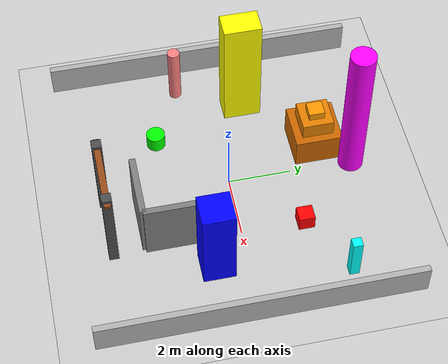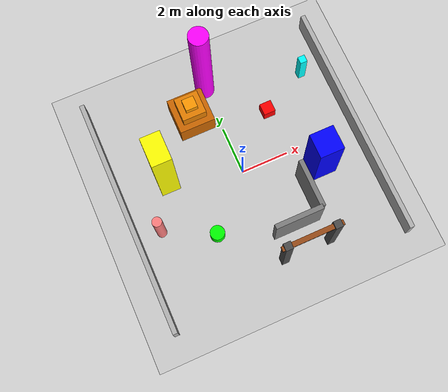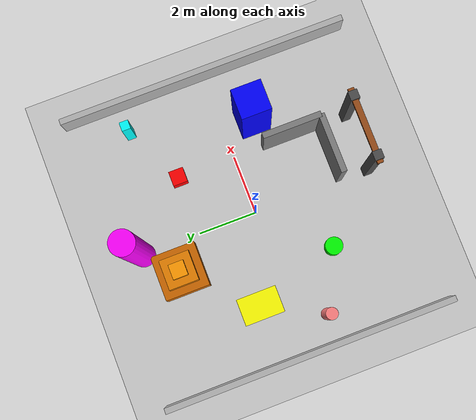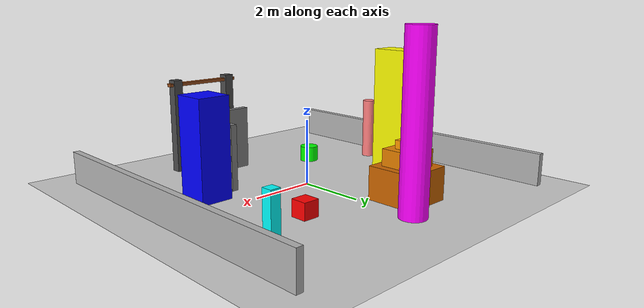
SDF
<?xml version='1.0' encoding='utf-8'?>
<sdf version="1.6">
  <world name="simple_world">

    <!-- Light -->
    <light type="directional" name="sun">
      <cast_shadows>true</cast_shadows>
      <pose>0 0 10 0 0 0</pose>
      <diffuse>0.8 0.8 0.8 1</diffuse>
      <specular>0.2 0.2 0.2 1</specular>
      <attenuation>
        <range>1000</range>
        <constant>0.9</constant>
        <linear>0.01</linear>
        <quadratic>0.001</quadratic>
      </attenuation>
      <direction>-0.5 0.1 -0.9</direction>
    </light>

    <!-- Ground Plane -->
    <model name="ground_plane">
      <static>true</static>
      <link name="link">
        <collision name="collision">
          <geometry>
            <plane>
              <normal>0 0 1</normal>
            </plane>
          </geometry>
        </collision>
        <visual name="visual">
          <geometry>
            <plane>
              <normal>0 0 1</normal>
              <size>100 100</size>
            </plane>
          </geometry>
          <material>
            <ambient>0.8 0.8 0.8 1</ambient>
            <diffuse>0.8 0.8 0.8 1</diffuse>
            <specular>0.8 0.8 0.8 1</specular>
          </material>
        </visual>
      </link>
    </model>

    <!-- Simple walls for testing -->
    <model name="wall_1">
      <static>true</static>
      <pose>5 0 0.5 0 0 0</pose>
      <link name="link">
        <collision name="collision">
          <geometry>
            <box>
              <size>0.2 10 1</size>
            </box>
          </geometry>
        </collision>
        <visual name="visual">
          <geometry>
            <box>
              <size>0.2 10 1</size>
            </box>
          </geometry>
          <material>
            <ambient>0.7 0.7 0.7 1</ambient>
            <diffuse>0.7 0.7 0.7 1</diffuse>
          </material>
        </visual>
      </link>
    </model>

    <model name="wall_2">
      <static>true</static>
      <pose>-5 0 0.5 0 0 0</pose>
      <link name="link">
        <collision name="collision">
          <geometry>
            <box>
              <size>0.2 10 1</size>
            </box>
          </geometry>
        </collision>
        <visual name="visual">
          <geometry>
            <box>
              <size>0.2 10 1</size>
            </box>
          </geometry>
          <material>
            <ambient>0.7 0.7 0.7 1</ambient>
            <diffuse>0.7 0.7 0.7 1</diffuse>
          </material>
        </visual>
      </link>
    </model>

    <!-- Some obstacles for LIDAR testing -->
    <model name="obstacle_1">
      <static>true</static>
      <pose>2 2 0.25 0 0 0</pose>
      <link name="link">
        <collision name="collision">
          <geometry>
            <box>
              <size>0.5 0.5 0.5</size>
            </box>
          </geometry>
        </collision>
        <visual name="visual">
          <geometry>
            <box>
              <size>0.5 0.5 0.5</size>
            </box>
          </geometry>
          <material>
            <ambient>1 0 0 1</ambient>
            <diffuse>1 0 0 1</diffuse>
          </material>
        </visual>
      </link>
    </model>

    <model name="obstacle_2">
      <static>true</static>
      <pose>-2 -2 0.25 0 0 0</pose>
      <link name="link">
        <collision name="collision">
          <geometry>
            <cylinder>
              <radius>0.3</radius>
              <length>0.5</length>
            </cylinder>
          </geometry>
        </collision>
        <visual name="visual">
          <geometry>
            <cylinder>
              <radius>0.3</radius>
              <length>0.5</length>
            </cylinder>
          </geometry>
          <material>
            <ambient>0 1 0 1</ambient>
            <diffuse>0 1 0 1</diffuse>
          </material>
        </visual>
      </link>
    </model>

    <!-- Tall building blocks -->
    <model name="tall_building_1">
      <static>true</static>
      <pose>3 -1 1.5 0 0 0</pose>
      <link name="link">
        <collision name="collision">
          <geometry>
            <box>
              <size>1 1 3</size>
            </box>
          </geometry>
        </collision>
        <visual name="visual">
          <geometry>
            <box>
              <size>1 1 3</size>
            </box>
          </geometry>
          <material>
            <ambient>0 0 1 1</ambient>
            <diffuse>0 0 1 1</diffuse>
          </material>
        </visual>
      </link>
    </model>

    <model name="tall_building_2">
      <static>true</static>
      <pose>-3 1 2 0 0 0</pose>
      <link name="link">
        <collision name="collision">
          <geometry>
            <box>
              <size>0.8 1.2 4</size>
            </box>
          </geometry>
        </collision>
        <visual name="visual">
          <geometry>
            <box>
              <size>0.8 1.2 4</size>
            </box>
          </geometry>
          <material>
            <ambient>1 1 0 1</ambient>
            <diffuse>1 1 0 1</diffuse>
          </material>
        </visual>
      </link>
    </model>

    <!-- Tower -->
    <model name="tower">
      <static>true</static>
      <pose>0 4 2.5 0 0 0</pose>
      <link name="link">
        <collision name="collision">
          <geometry>
            <cylinder>
              <radius>0.4</radius>
              <length>5</length>
            </cylinder>
          </geometry>
        </collision>
        <visual name="visual">
          <geometry>
            <cylinder>
              <radius>0.4</radius>
              <length>5</length>
            </cylinder>
          </geometry>
          <material>
            <ambient>1 0 1 1</ambient>
            <diffuse>1 0 1 1</diffuse>
          </material>
        </visual>
      </link>
    </model>

    <!-- L-shaped wall -->
    <model name="l_wall_1">
      <static>true</static>
      <pose>1 -3 1 0 0 0</pose>
      <link name="link">
        <collision name="collision">
          <geometry>
            <box>
              <size>2 0.2 2</size>
            </box>
          </geometry>
        </collision>
        <visual name="visual">
          <geometry>
            <box>
              <size>2 0.2 2</size>
            </box>
          </geometry>
          <material>
            <ambient>0.5 0.5 0.5 1</ambient>
            <diffuse>0.5 0.5 0.5 1</diffuse>
          </material>
        </visual>
      </link>
    </model>

    <model name="l_wall_2">
      <static>true</static>
      <pose>2 -2 1 0 0 0</pose>
      <link name="link">
        <collision name="collision">
          <geometry>
            <box>
              <size>0.2 2 2</size>
            </box>
          </geometry>
        </collision>
        <visual name="visual">
          <geometry>
            <box>
              <size>0.2 2 2</size>
            </box>
          </geometry>
          <material>
            <ambient>0.5 0.5 0.5 1</ambient>
            <diffuse>0.5 0.5 0.5 1</diffuse>
          </material>
        </visual>
      </link>
    </model>

    <!-- Pyramid-like structure -->
    <model name="pyramid_base">
      <static>true</static>
      <pose>-1 3 0.5 0 0 0</pose>
      <link name="link">
        <collision name="collision">
          <geometry>
            <box>
              <size>1.5 1.5 1</size>
            </box>
          </geometry>
        </collision>
        <visual name="visual">
          <geometry>
            <box>
              <size>1.5 1.5 1</size>
            </box>
          </geometry>
          <material>
            <ambient>0.8 0.4 0 1</ambient>
            <diffuse>0.8 0.4 0 1</diffuse>
          </material>
        </visual>
      </link>
    </model>

    <model name="pyramid_mid">
      <static>true</static>
      <pose>-1 3 1.25 0 0 0</pose>
      <link name="link">
        <collision name="collision">
          <geometry>
            <box>
              <size>1 1 0.5</size>
            </box>
          </geometry>
        </collision>
        <visual name="visual">
          <geometry>
            <box>
              <size>1 1 0.5</size>
            </box>
          </geometry>
          <material>
            <ambient>0.9 0.5 0 1</ambient>
            <diffuse>0.9 0.5 0 1</diffuse>
          </material>
        </visual>
      </link>
    </model>

    <model name="pyramid_top">
      <static>true</static>
      <pose>-1 3 1.625 0 0 0</pose>
      <link name="link">
        <collision name="collision">
          <geometry>
            <box>
              <size>0.5 0.5 0.25</size>
            </box>
          </geometry>
        </collision>
        <visual name="visual">
          <geometry>
            <box>
              <size>0.5 0.5 0.25</size>
            </box>
          </geometry>
          <material>
            <ambient>1 0.6 0 1</ambient>
            <diffuse>1 0.6 0 1</diffuse>
          </material>
        </visual>
      </link>
    </model>

    <!-- Scattered small obstacles -->
    <model name="small_obstacle_1">
      <static>true</static>
      <pose>4 3 0.75 0 0 0</pose>
      <link name="link">
        <collision name="collision">
          <geometry>
            <box>
              <size>0.3 0.3 1.5</size>
            </box>
          </geometry>
        </collision>
        <visual name="visual">
          <geometry>
            <box>
              <size>0.3 0.3 1.5</size>
            </box>
          </geometry>
          <material>
            <ambient>0 1 1 1</ambient>
            <diffuse>0 1 1 1</diffuse>
          </material>
        </visual>
      </link>
    </model>

    <model name="small_obstacle_2">
      <static>true</static>
      <pose>-4 -1 1 0 0 0</pose>
      <link name="link">
        <collision name="collision">
          <geometry>
            <cylinder>
              <radius>0.2</radius>
              <length>2</length>
            </cylinder>
          </geometry>
        </collision>
        <visual name="visual">
          <geometry>
            <cylinder>
              <radius>0.2</radius>
              <length>2</length>
            </cylinder>
          </geometry>
          <material>
            <ambient>1 0.5 0.5 1</ambient>
            <diffuse>1 0.5 0.5 1</diffuse>
          </material>
        </visual>
      </link>
    </model>

    <!-- Bridge-like structure -->
    <model name="bridge_pillar_1">
      <static>true</static>
      <pose>0 -4 1.5 0 0 0</pose>
      <link name="link">
        <collision name="collision">
          <geometry>
            <box>
              <size>0.3 0.3 3</size>
            </box>
          </geometry>
        </collision>
        <visual name="visual">
          <geometry>
            <box>
              <size>0.3 0.3 3</size>
            </box>
          </geometry>
          <material>
            <ambient>0.3 0.3 0.3 1</ambient>
            <diffuse>0.3 0.3 0.3 1</diffuse>
          </material>
        </visual>
      </link>
    </model>

    <model name="bridge_pillar_2">
      <static>true</static>
      <pose>2 -4 1.5 0 0 0</pose>
      <link name="link">
        <collision name="collision">
          <geometry>
            <box>
              <size>0.3 0.3 3</size>
            </box>
          </geometry>
        </collision>
        <visual name="visual">
          <geometry>
            <box>
              <size>0.3 0.3 3</size>
            </box>
          </geometry>
          <material>
            <ambient>0.3 0.3 0.3 1</ambient>
            <diffuse>0.3 0.3 0.3 1</diffuse>
          </material>
        </visual>
      </link>
    </model>

    <model name="bridge_deck">
      <static>true</static>
      <pose>1 -4 2.85 0 0 0</pose>
      <link name="link">
        <collision name="collision">
          <geometry>
            <box>
              <size>2.5 0.2 0.1</size>
            </box>
          </geometry>
        </collision>
        <visual name="visual">
          <geometry>
            <box>
              <size>2.5 0.2 0.1</size>
            </box>
          </geometry>
          <material>
            <ambient>0.6 0.3 0.1 1</ambient>
            <diffuse>0.6 0.3 0.1 1</diffuse>
          </material>
        </visual>
      </link>
    </model>

    <!-- Camera settings -->
    <gui fullscreen='0'>
      <camera name='user_camera'>
        <pose>-3 -4 4 0 0.6 0.7</pose>
        <view_controller>orbit</view_controller>
        <projection_type>perspective</projection_type>
      </camera>
    </gui>
  </world>
</sdf>
